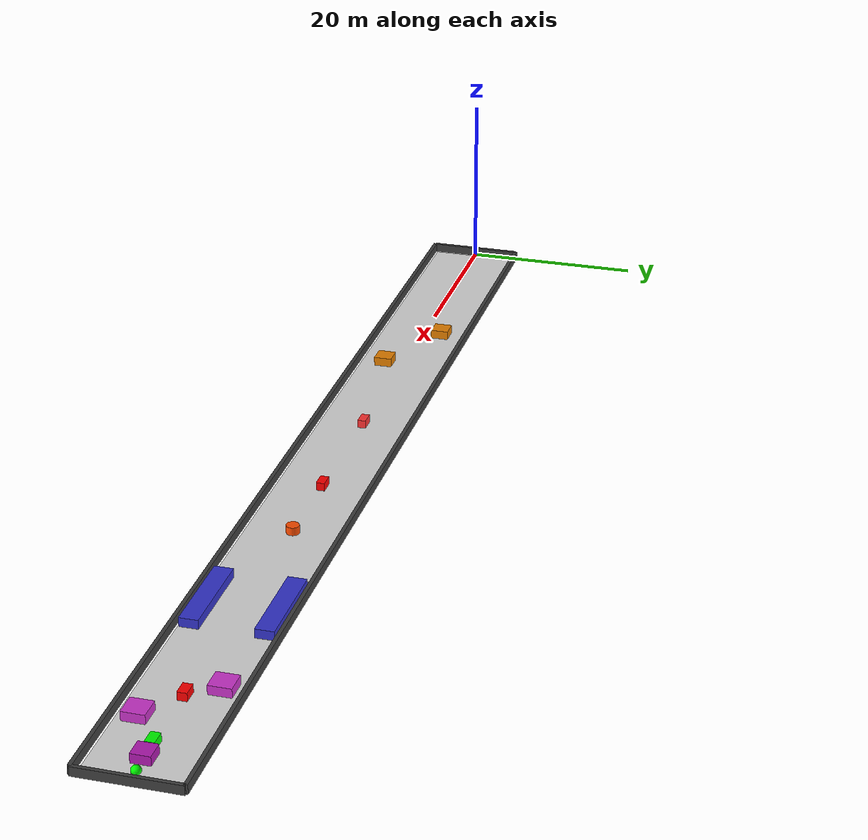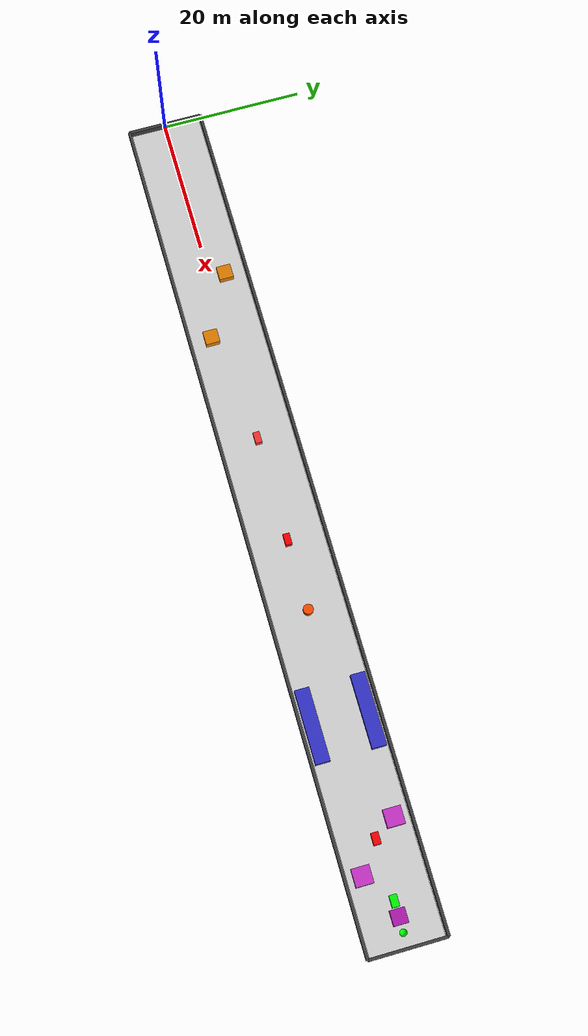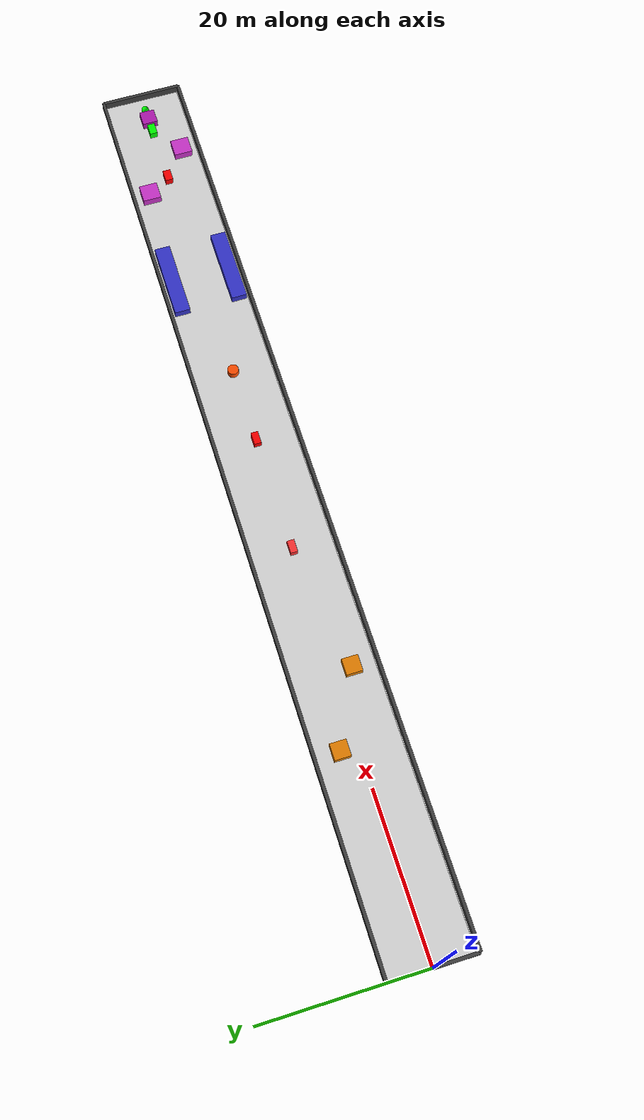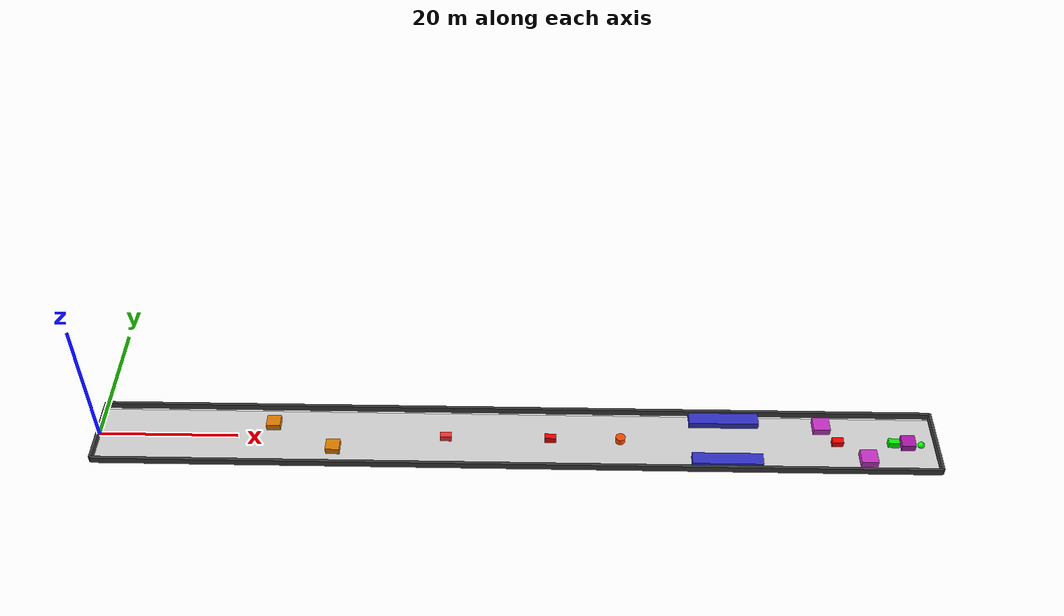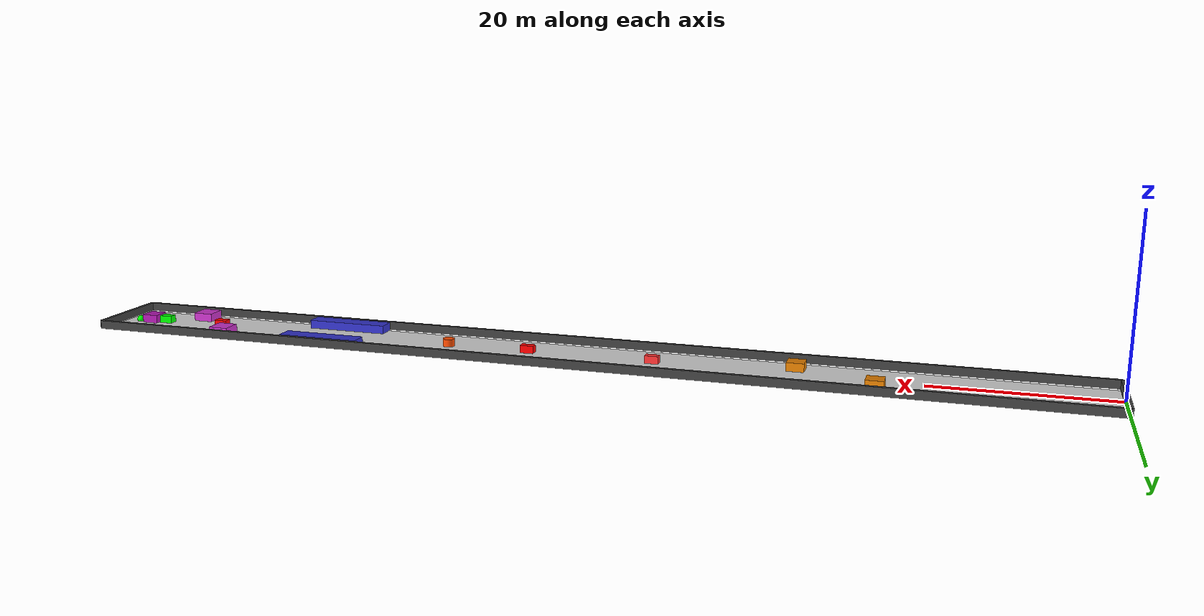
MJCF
<mujoco model="RL_Curriculum_Corridor">

    <option timestep="0.01" gravity="0 0 -9.81"/>

    <visual>
        <headlight diffuse="0.7 0.7 0.7"
                   ambient="0.3 0.3 0.3"/>

        <global azimuth="135"
                elevation="-28"/>
    </visual>

    <worldbody>

        <!-- FLOOR -->

        <!-- Map: x = 0 -> 120 -->
        <geom name="floor"
              type="plane"
              pos="60 0 0"
              size="60 5 0.1"
              rgba="0.85 0.85 0.85 1"/>

        <!-- WALLS -->

        <!-- Top -->
        <geom type="box"
              pos="60 5.3 0.5"
              size="60 0.2 0.5"
              rgba="0.25 0.25 0.25 1"/>

        <!-- Bottom -->
        <geom type="box"
              pos="60 -5.3 0.5"
              size="60 0.2 0.5"
              rgba="0.25 0.25 0.25 1"/>

        <!-- Start -->
        <geom type="box"
              pos="0 0 0.5"
              size="0.2 5.3 0.5"
              rgba="0.25 0.25 0.25 1"/>

        <!-- End -->
        <geom type="box"
              pos="120 0 0.5"
              size="0.2 5.3 0.5"
              rgba="0.25 0.25 0.25 1"/>

        <!-- ZONE 1 : EMPTY -->

        <!-- ZONE 2 : STATIC OBSTACLES -->

        <geom type="box"
              pos="25 2.2 0.5"
              size="1 1 0.5"
              rgba="0.9 0.5 0 1"/>

        <geom type="box"
              pos="34 -2.2 0.5"
              size="1 1 0.5"
              rgba="0.9 0.5 0 1"/>

        <!-- ZONE 3 : SINGLE SLOW DYNAMIC -->

        <body name="slow_dyn"
              pos="50 0 0.45">

            <joint name="slow_joint"
                   type="slide"
                   axis="0 1 0"
                   range="-3.8 3.8"
                   damping="2"
                   limited="true"/>

            <geom type="box"
                  size="0.8 0.45 0.45"
                  mass="20"
                  rgba="1 0.2 0.2 1"/>

        </body>

        <!-- ZONE 4 : MULTI DYNAMIC -->

        <body name="fast_dyn1"
              pos="65 0 0.45">

            <joint name="fast_joint1"
                   type="slide"
                   axis="0 1 0"
                   range="-3.8 3.8"
                   damping="1.8"
                   limited="true"/>

            <geom type="box"
                  size="0.8 0.45 0.45"
                  mass="22"
                  rgba="1 0 0 1"/>

        </body>

        <body name="fast_dyn2"
              pos="75 0 0.45">

            <joint name="fast_joint2"
                   type="slide"
                   axis="0 1 0"
                   range="-3.8 3.8"
                   damping="1.8"
                   limited="true"/>

            <geom type="cylinder"
                  size="0.7 0.45"
                  mass="22"
                  rgba="1 0.3 0 1"/>

        </body>

        <!-- ZONE 5 : NARROW PASSAGE -->

        <!-- Upper wall -->
        <geom type="box"
              pos="90 3.8 0.5"
              size="5 1 0.5"
              rgba="0.2 0.2 0.8 1"/>

        <!-- Lower wall -->
        <geom type="box"
              pos="90 -3.8 0.5"
              size="5 1 0.5"
              rgba="0.2 0.2 0.8 1"/>

        <!-- ZONE 6 : FINAL HARD ZONE -->
        <!-- STATIC + DYNAMIC -->

        <!-- ===== STATIC BLOCKS ===== -->

        <geom type="box"
              pos="104 3 0.5"
              size="1.2 1.2 0.5"
              rgba="0.8 0.2 0.8 1"/>

        <geom type="box"
              pos="110 -3 0.5"
              size="1.2 1.2 0.5"
              rgba="0.8 0.2 0.8 1"/>

        <geom type="box"
              pos="116 0 0.5"
              size="1 1 0.5"
              rgba="0.7 0.1 0.7 1"/>

        <!-- ===== DYNAMIC 1 ===== -->
        <!-- Vertical movement -->

        <body name="cross_vertical"
              pos="106 0 0.45">

            <joint name="cross_y"
                   type="slide"
                   axis="0 1 0"
                   range="-3.8 3.8"
                   damping="1.5"
                   limited="true"/>

            <geom type="box"
                  size="0.8 0.5 0.45"
                  mass="25"
                  rgba="1 0 0 1"/>

        </body>

        <!-- ===== DYNAMIC 2 ===== -->
        <!-- Horizontal movement -->

        <body name="cross_horizontal"
              pos="114 0 0.45">

            <joint name="cross_x"
                   type="slide"
                   axis="1 0 0"
                   range="110 118"
                   damping="1.5"
                   limited="true"/>

            <geom type="box"
                  size="0.8 0.5 0.45"
                  mass="25"
                  rgba="0 1 0 1"/>

        </body>

        <!-- GOAL -->

        <body name="goal"
              pos="118 0 0.1"
              mocap="true">

            <site name="goal_site"
                  type="sphere"
                  size="0.5"
                  rgba="0 1 0 0.9"/>

        </body>

    </worldbody>

    <!-- ACTUATORS -->

    <actuator>

        <!-- Zone 3 -->
        <position name="slow_ctrl"
                  joint="slow_joint"
                  kp="500"
                  kv="90"
                  ctrlrange="-3.8 3.8"/>

        <!-- Zone 4 -->
        <position name="fast_ctrl1"
                  joint="fast_joint1"
                  kp="550"
                  kv="95"
                  ctrlrange="-3.8 3.8"/>

        <position name="fast_ctrl2"
                  joint="fast_joint2"
                  kp="550"
                  kv="95"
                  ctrlrange="-3.8 3.8"/>

        <!-- Zone 6 -->
        <position name="cross_y_ctrl"
                  joint="cross_y"
                  kp="600"
                  kv="100"
                  ctrlrange="-3.8 3.8"/>

        <position name="cross_x_ctrl"
                  joint="cross_x"
                  kp="600"
                  kv="100"
                  ctrlrange="110 118"/>

    </actuator>

</mujoco>
